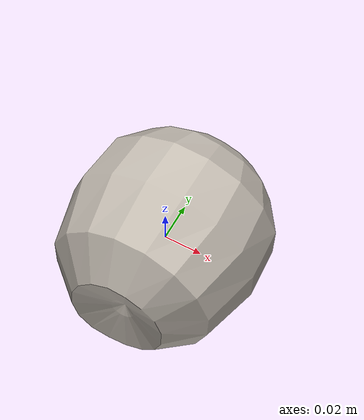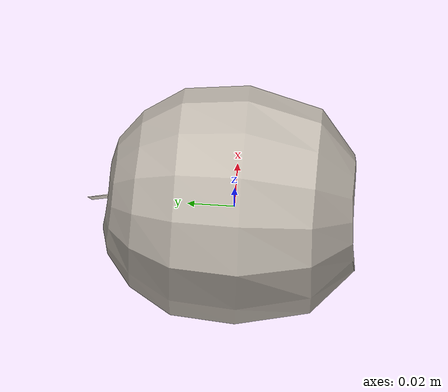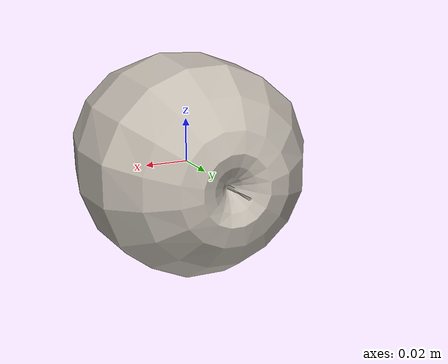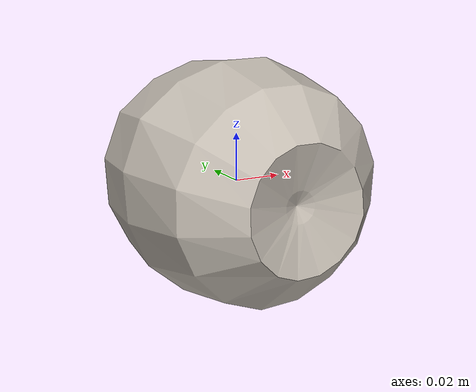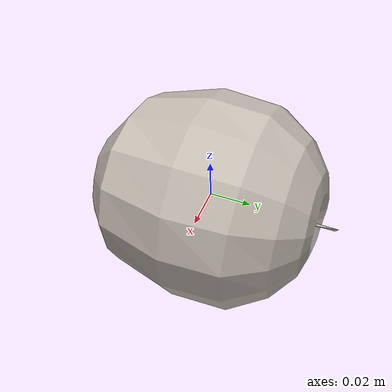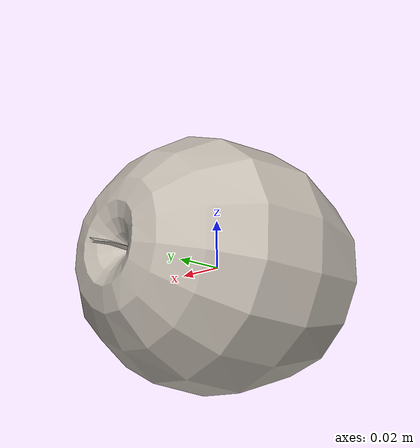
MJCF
<mujoco model="Apple_14">
  <compiler autolimits="true" boundmass="0.01" angle="radian"/>
  <default>
    <default class="/">
      <default class="__VISUAL_MJT__">
        <geom contype="0" conaffinity="0" group="0"/>
      </default>
      <default class="__STRUCTURAL_MJT__">
        <geom contype="8" conaffinity="15" group="4" friction="0.90000000000000002 0.90000000000000002 0.001" solref="0.025000000000000001 1" solimp="0.998 0.998 0.001"/>
      </default>
      <default class="__DYNAMIC_MJT__">
        <geom contype="1" conaffinity="15" group="4" friction="0.90000000000000002 0.90000000000000002 0.001" solref="0.025000000000000001 1" solimp="0.998 0.998 0.001"/>
      </default>
    </default>
  </default>
  <asset>
    <texture name="Apple1_Mat6" type="2d" file="Apple1_AlbedoTransparency6.png"/>
    <material name="material_Apple1_Mat6" class="/" texture="Apple1_Mat6" specular="0.5" shininess="0.5" rgba="1 1 1 1"/>
    <mesh name="Apple_14_apple_a14" class="/" file="Apple_14_apple_a14/Apple_14_apple_a14.obj" scale="1 1 1"/>
  </asset>
  <worldbody>
    <body name="Apple_14">
      <joint name="Apple_14_free" class="/" type="free" pos="0 0 0" axis="0 0 1" stiffness="0" range="0 0" armature="0" damping="0.10000000000000001" frictionloss="0"/>
      <body name="Apple_14_apple_a14" pos="-0 0.0032799999999999999 0" quat="1 0 0 0">
        <geom name="Apple_14_apple_a14" class="__VISUAL_MJT__" type="mesh" material="material_Apple1_Mat6" shellinertia="false" mesh="Apple_14_apple_a14"/>
        <geom name="Apple_14_PrimitiveCollider_0" class="__DYNAMIC_MJT__" type="capsule" size="0.050722062587738037 0.0076148957014083862" rgba="0 1 0 1" pos="-0 -0.0032764226198196411 0" quat="0.70710678118654757 0.70710678118654746 0 0"/>
      </body>
    </body>
  </worldbody>
</mujoco>
